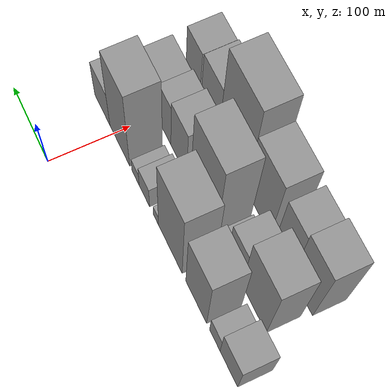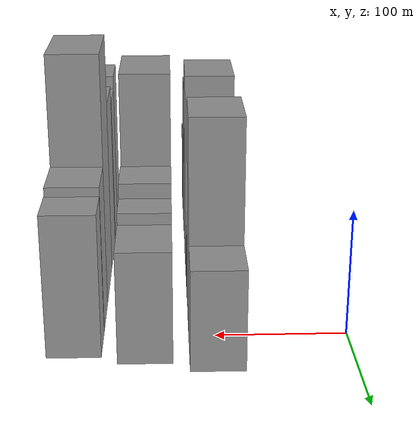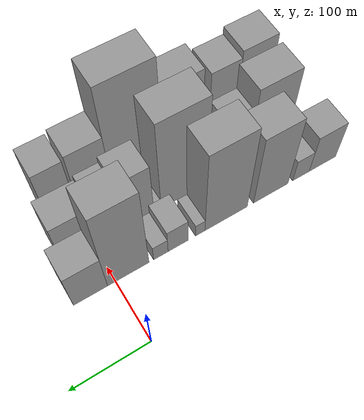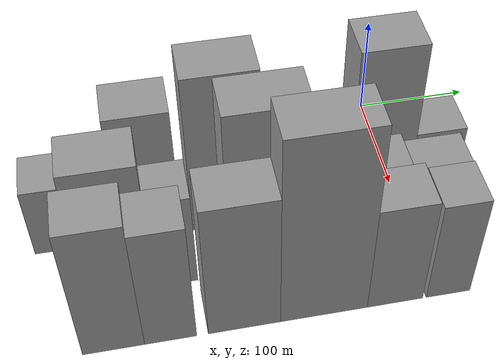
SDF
<sdf version="1.6">
 <world name="default">
  <model name="building_7">
   <static>1</static>
   <pose>100.0000 -290.6172 0 0.000000 0.000000 0.000000</pose>
   <link name="link">
    <pose>0 0 37.50 0 0 0</pose>
    <collision name="collision"><geometry><box><size>40.0000 40.5959 75.0000</size></box></geometry></collision>
    <visual name="visual">
     <cast_shadows>0</cast_shadows>
     <geometry><box><size>40.0000 40.5959 75.0000</size></box></geometry>
     <material>
      <script>
       <uri>model://grey_wall/materials/scripts</uri>
       <uri>model://grey_wall/materials/textures</uri>
       <name>vrc/grey_wall</name>
      </script>
     </material>
    </visual>
   </link>
  </model>
  <model name="building_8">
   <static>1</static>
   <pose>100.0000 -257.9025 0 0.000000 0.000000 0.000000</pose>
   <link name="link">
    <pose>0 0 22.50 0 0 0</pose>
    <collision name="collision"><geometry><box><size>40.0000 24.8334 45.0000</size></box></geometry></collision>
    <visual name="visual">
     <cast_shadows>0</cast_shadows>
     <geometry><box><size>40.0000 24.8334 45.0000</size></box></geometry>
     <material>
      <script>
       <uri>model://grey_wall/materials/scripts</uri>
       <uri>model://grey_wall/materials/textures</uri>
       <name>vrc/grey_wall</name>
      </script>
     </material>
    </visual>
   </link>
  </model>
  <model name="building_9">
   <static>1</static>
   <pose>100.0000 -213.2103 0 0.000000 0.000000 0.000000</pose>
   <link name="link">
    <pose>0 0 70.50 0 0 0</pose>
    <collision name="collision"><geometry><box><size>40.0000 50.5510 141.0000</size></box></geometry></collision>
    <visual name="visual">
     <cast_shadows>0</cast_shadows>
     <geometry><box><size>40.0000 50.5510 141.0000</size></box></geometry>
     <material>
      <script>
       <uri>model://grey_wall/materials/scripts</uri>
       <uri>model://grey_wall/materials/textures</uri>
       <name>vrc/grey_wall</name>
      </script>
     </material>
    </visual>
   </link>
  </model>
  <model name="building_10">
   <static>1</static>
   <pose>100.0000 -149.0451 0 0.000000 0.000000 0.000000</pose>
   <link name="link">
    <pose>0 0 85.50 0 0 0</pose>
    <collision name="collision"><geometry><box><size>40.0000 59.7794 171.0000</size></box></geometry></collision>
    <visual name="visual">
     <cast_shadows>0</cast_shadows>
     <geometry><box><size>40.0000 59.7794 171.0000</size></box></geometry>
     <material>
      <script>
       <uri>model://grey_wall/materials/scripts</uri>
       <uri>model://grey_wall/materials/textures</uri>
       <name>vrc/grey_wall</name>
      </script>
     </material>
    </visual>
   </link>
  </model>
  <model name="building_11">
   <static>1</static>
   <pose>100.0000 -112.6916 0 0.000000 0.000000 0.000000</pose>
   <link name="link">
    <pose>0 0 13.50 0 0 0</pose>
    <collision name="collision"><geometry><box><size>40.0000 12.9276 27.0000</size></box></geometry></collision>
    <visual name="visual">
     <cast_shadows>0</cast_shadows>
     <geometry><box><size>40.0000 12.9276 27.0000</size></box></geometry>
     <material>
      <script>
       <uri>model://grey_wall/materials/scripts</uri>
       <uri>model://grey_wall/materials/textures</uri>
       <name>vrc/grey_wall</name>
      </script>
     </material>
    </visual>
   </link>
  </model>
  <model name="building_12">
   <static>1</static>
   <pose>100.0000 -82.6080 0 0.000000 0.000000 0.000000</pose>
   <link name="link">
    <pose>0 0 25.50 0 0 0</pose>
    <collision name="collision"><geometry><box><size>40.0000 27.2396 51.0000</size></box></geometry></collision>
    <visual name="visual">
     <cast_shadows>0</cast_shadows>
     <geometry><box><size>40.0000 27.2396 51.0000</size></box></geometry>
     <material>
      <script>
       <uri>model://grey_wall/materials/scripts</uri>
       <uri>model://grey_wall/materials/textures</uri>
       <name>vrc/grey_wall</name>
      </script>
     </material>
    </visual>
   </link>
  </model>
  <model name="building_13">
   <static>1</static>
   <pose>100.0000 -59.3566 0 0.000000 0.000000 0.000000</pose>
   <link name="link">
    <pose>0 0 16.50 0 0 0</pose>
    <collision name="collision"><geometry><box><size>40.0000 19.2632 33.0000</size></box></geometry></collision>
    <visual name="visual">
     <cast_shadows>0</cast_shadows>
     <geometry><box><size>40.0000 19.2632 33.0000</size></box></geometry>
     <material>
      <script>
       <uri>model://grey_wall/materials/scripts</uri>
       <uri>model://grey_wall/materials/textures</uri>
       <name>vrc/grey_wall</name>
      </script>
     </material>
    </visual>
   </link>
  </model>
  <model name="building_14">
   <static>1</static>
   <pose>100.0000 -16.7915 0 0.000000 0.000000 0.000000</pose>
   <link name="link">
    <pose>0 0 87.00 0 0 0</pose>
    <collision name="collision"><geometry><box><size>40.0000 53.8670 174.0000</size></box></geometry></collision>
    <visual name="visual">
     <cast_shadows>0</cast_shadows>
     <geometry><box><size>40.0000 53.8670 174.0000</size></box></geometry>
     <material>
      <script>
       <uri>model://grey_wall/materials/scripts</uri>
       <uri>model://grey_wall/materials/textures</uri>
       <name>vrc/grey_wall</name>
      </script>
     </material>
    </visual>
   </link>
  </model>
  <model name="building_15">
   <static>1</static>
   <pose>100.0000 31.6041 0 0.000000 0.000000 0.000000</pose>
   <link name="link">
    <pose>0 0 39.00 0 0 0</pose>
    <collision name="collision"><geometry><box><size>40.0000 42.9242 78.0000</size></box></geometry></collision>
    <visual name="visual">
     <cast_shadows>0</cast_shadows>
     <geometry><box><size>40.0000 42.9242 78.0000</size></box></geometry>
     <material>
      <script>
       <uri>model://grey_wall/materials/scripts</uri>
       <uri>model://grey_wall/materials/textures</uri>
       <name>vrc/grey_wall</name>
      </script>
     </material>
    </visual>
   </link>
  </model>
  <model name="building_40">
   <static>1</static>
   <pose>152.0000 -245.1014 0 0.000000 0.000000 0.000000</pose>
   <link name="link">
    <pose>0 0 72.00 0 0 0</pose>
    <collision name="collision"><geometry><box><size>40.0000 56.6713 144.0000</size></box></geometry></collision>
    <visual name="visual">
     <cast_shadows>0</cast_shadows>
     <geometry><box><size>40.0000 56.6713 144.0000</size></box></geometry>
     <material>
      <script>
       <uri>model://grey_wall/materials/scripts</uri>
       <uri>model://grey_wall/materials/textures</uri>
       <name>vrc/grey_wall</name>
      </script>
     </material>
    </visual>
   </link>
  </model>
  <model name="building_41">
   <static>1</static>
   <pose>152.0000 -199.3753 0 0.000000 0.000000 0.000000</pose>
   <link name="link">
    <pose>0 0 51.00 0 0 0</pose>
    <collision name="collision"><geometry><box><size>40.0000 34.7810 102.0000</size></box></geometry></collision>
    <visual name="visual">
     <cast_shadows>0</cast_shadows>
     <geometry><box><size>40.0000 34.7810 102.0000</size></box></geometry>
     <material>
      <script>
       <uri>model://grey_wall/materials/scripts</uri>
       <uri>model://grey_wall/materials/textures</uri>
       <name>vrc/grey_wall</name>
      </script>
     </material>
    </visual>
   </link>
  </model>
  <model name="building_42">
   <static>1</static>
   <pose>152.0000 -168.0326 0 0.000000 0.000000 0.000000</pose>
   <link name="link">
    <pose>0 0 15.00 0 0 0</pose>
    <collision name="collision"><geometry><box><size>40.0000 15.9043 30.0000</size></box></geometry></collision>
    <visual name="visual">
     <cast_shadows>0</cast_shadows>
     <geometry><box><size>40.0000 15.9043 30.0000</size></box></geometry>
     <material>
      <script>
       <uri>model://grey_wall/materials/scripts</uri>
       <uri>model://grey_wall/materials/textures</uri>
       <name>vrc/grey_wall</name>
      </script>
     </material>
    </visual>
   </link>
  </model>
  <model name="building_43">
   <static>1</static>
   <pose>152.0000 -123.2898 0 0.000000 0.000000 0.000000</pose>
   <link name="link">
    <pose>0 0 90.00 0 0 0</pose>
    <collision name="collision"><geometry><box><size>40.0000 65.5813 180.0000</size></box></geometry></collision>
    <visual name="visual">
     <cast_shadows>0</cast_shadows>
     <geometry><box><size>40.0000 65.5813 180.0000</size></box></geometry>
     <material>
      <script>
       <uri>model://grey_wall/materials/scripts</uri>
       <uri>model://grey_wall/materials/textures</uri>
       <name>vrc/grey_wall</name>
      </script>
     </material>
    </visual>
   </link>
  </model>
  <model name="building_44">
   <static>1</static>
   <pose>152.0000 -85.5700 0 0.000000 0.000000 0.000000</pose>
   <link name="link">
    <pose>0 0 10.50 0 0 0</pose>
    <collision name="collision"><geometry><box><size>40.0000 9.8583 21.0000</size></box></geometry></collision>
    <visual name="visual">
     <cast_shadows>0</cast_shadows>
     <geometry><box><size>40.0000 9.8583 21.0000</size></box></geometry>
     <material>
      <script>
       <uri>model://grey_wall/materials/scripts</uri>
       <uri>model://grey_wall/materials/textures</uri>
       <name>vrc/grey_wall</name>
      </script>
     </material>
    </visual>
   </link>
  </model>
  <model name="building_45">
   <static>1</static>
   <pose>152.0000 -60.3134 0 0.000000 0.000000 0.000000</pose>
   <link name="link">
    <pose>0 0 54.00 0 0 0</pose>
    <collision name="collision"><geometry><box><size>40.0000 40.6549 108.0000</size></box></geometry></collision>
    <visual name="visual">
     <cast_shadows>0</cast_shadows>
     <geometry><box><size>40.0000 40.6549 108.0000</size></box></geometry>
     <material>
      <script>
       <uri>model://grey_wall/materials/scripts</uri>
       <uri>model://grey_wall/materials/textures</uri>
       <name>vrc/grey_wall</name>
      </script>
     </material>
    </visual>
   </link>
  </model>
  <model name="building_46">
   <static>1</static>
   <pose>152.0000 -24.6356 0 0.000000 0.000000 0.000000</pose>
   <link name="link">
    <pose>0 0 48.00 0 0 0</pose>
    <collision name="collision"><geometry><box><size>40.0000 30.7005 96.0000</size></box></geometry></collision>
    <visual name="visual">
     <cast_shadows>0</cast_shadows>
     <geometry><box><size>40.0000 30.7005 96.0000</size></box></geometry>
     <material>
      <script>
       <uri>model://grey_wall/materials/scripts</uri>
       <uri>model://grey_wall/materials/textures</uri>
       <name>vrc/grey_wall</name>
      </script>
     </material>
    </visual>
   </link>
  </model>
  <model name="building_47">
   <static>1</static>
   <pose>152.0000 15.9522 0 0.000000 0.000000 0.000000</pose>
   <link name="link">
    <pose>0 0 43.50 0 0 0</pose>
    <collision name="collision"><geometry><box><size>40.0000 50.4752 87.0000</size></box></geometry></collision>
    <visual name="visual">
     <cast_shadows>0</cast_shadows>
     <geometry><box><size>40.0000 50.4752 87.0000</size></box></geometry>
     <material>
      <script>
       <uri>model://grey_wall/materials/scripts</uri>
       <uri>model://grey_wall/materials/textures</uri>
       <name>vrc/grey_wall</name>
      </script>
     </material>
    </visual>
   </link>
  </model>
  <model name="building_72">
   <static>1</static>
   <pose>204.0000 -254.2854 0 0.000000 0.000000 0.000000</pose>
   <link name="link">
    <pose>0 0 72.00 0 0 0</pose>
    <collision name="collision"><geometry><box><size>40.0000 47.3298 144.0000</size></box></geometry></collision>
    <visual name="visual">
     <cast_shadows>0</cast_shadows>
     <geometry><box><size>40.0000 47.3298 144.0000</size></box></geometry>
     <material>
      <script>
       <uri>model://grey_wall/materials/scripts</uri>
       <uri>model://grey_wall/materials/textures</uri>
       <name>vrc/grey_wall</name>
      </script>
     </material>
    </visual>
   </link>
  </model>
  <model name="building_73">
   <static>1</static>
   <pose>204.0000 -210.4198 0 0.000000 0.000000 0.000000</pose>
   <link name="link">
    <pose>0 0 66.00 0 0 0</pose>
    <collision name="collision"><geometry><box><size>40.0000 40.4013 132.0000</size></box></geometry></collision>
    <visual name="visual">
     <cast_shadows>0</cast_shadows>
     <geometry><box><size>40.0000 40.4013 132.0000</size></box></geometry>
     <material>
      <script>
       <uri>model://grey_wall/materials/scripts</uri>
       <uri>model://grey_wall/materials/textures</uri>
       <name>vrc/grey_wall</name>
      </script>
     </material>
    </visual>
   </link>
  </model>
  <model name="building_74">
   <static>1</static>
   <pose>204.0000 -152.7067 0 0.000000 0.000000 0.000000</pose>
   <link name="link">
    <pose>0 0 73.50 0 0 0</pose>
    <collision name="collision"><geometry><box><size>40.0000 57.0249 147.0000</size></box></geometry></collision>
    <visual name="visual">
     <cast_shadows>0</cast_shadows>
     <geometry><box><size>40.0000 57.0249 147.0000</size></box></geometry>
     <material>
      <script>
       <uri>model://grey_wall/materials/scripts</uri>
       <uri>model://grey_wall/materials/textures</uri>
       <name>vrc/grey_wall</name>
      </script>
     </material>
    </visual>
   </link>
  </model>
  <model name="building_75">
   <static>1</static>
   <pose>204.0000 -89.0440 0 0.000000 0.000000 0.000000</pose>
   <link name="link">
    <pose>0 0 102.00 0 0 0</pose>
    <collision name="collision"><geometry><box><size>40.0000 70.3006 204.0000</size></box></geometry></collision>
    <visual name="visual">
     <cast_shadows>0</cast_shadows>
     <geometry><box><size>40.0000 70.3006 204.0000</size></box></geometry>
     <material>
      <script>
       <uri>model://grey_wall/materials/scripts</uri>
       <uri>model://grey_wall/materials/textures</uri>
       <name>vrc/grey_wall</name>
      </script>
     </material>
    </visual>
   </link>
  </model>
  <model name="building_76">
   <static>1</static>
   <pose>204.0000 -31.0954 0 0.000000 0.000000 0.000000</pose>
   <link name="link">
    <pose>0 0 58.50 0 0 0</pose>
    <collision name="collision"><geometry><box><size>40.0000 45.5964 117.0000</size></box></geometry></collision>
    <visual name="visual">
     <cast_shadows>0</cast_shadows>
     <geometry><box><size>40.0000 45.5964 117.0000</size></box></geometry>
     <material>
      <script>
       <uri>model://grey_wall/materials/scripts</uri>
       <uri>model://grey_wall/materials/textures</uri>
       <name>vrc/grey_wall</name>
      </script>
     </material>
    </visual>
   </link>
  </model>
  <model name="building_77">
   <static>1</static>
   <pose>204.0000 12.9429 0 0.000000 0.000000 0.000000</pose>
   <link name="link">
    <pose>0 0 55.50 0 0 0</pose>
    <collision name="collision"><geometry><box><size>40.0000 36.4802 111.0000</size></box></geometry></collision>
    <visual name="visual">
     <cast_shadows>0</cast_shadows>
     <geometry><box><size>40.0000 36.4802 111.0000</size></box></geometry>
     <material>
      <script>
       <uri>model://grey_wall/materials/scripts</uri>
       <uri>model://grey_wall/materials/textures</uri>
       <name>vrc/grey_wall</name>
      </script>
     </material>
    </visual>
   </link>
  </model>
 </world>
</sdf>
